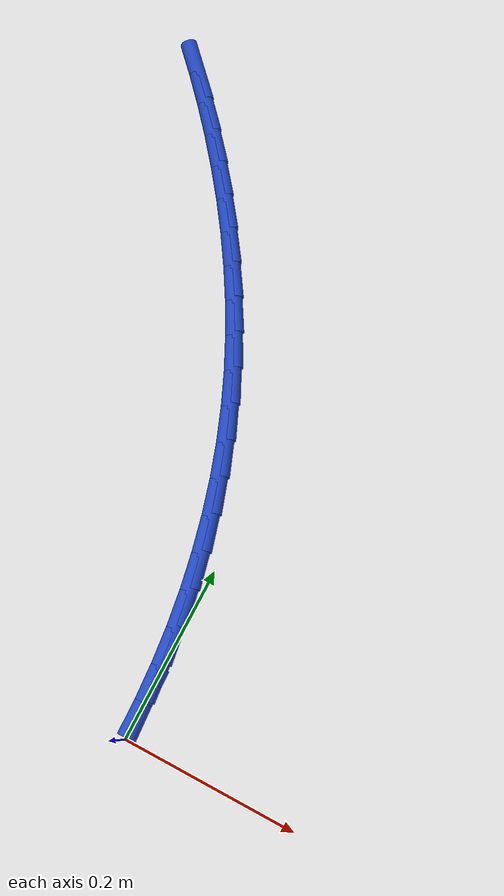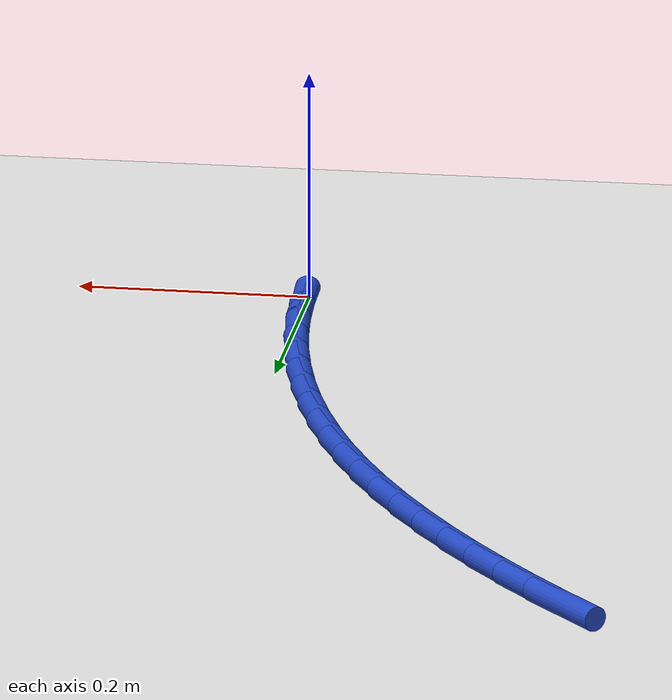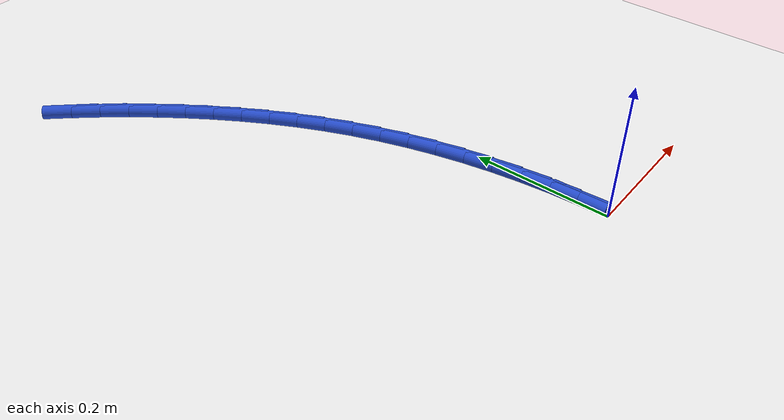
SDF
<sdf version="1.6">
 <world name="default">
  <model name="ground_plane">
   <static>1</static>
   <link name="link">
    <collision name="collision">
     <geometry><plane><normal>0 0 1</normal><size>100 100</size></plane></geometry>
     <surface><friction><ode><mu>100</mu><mu2>50</mu2></ode></friction></surface>
    </collision>
    <visual name="visual">
     <cast_shadows>0</cast_shadows>
     <geometry><plane><normal>0 0 1</normal><size>100 100</size></plane></geometry>
     <material>
      <script><uri>file://media/materials/scripts/gazebo.material</uri><name>Gazebo/WhiteGlow</name></script>
     </material>
    </visual>
   </link>
  </model>
  <model name="line">
   <link name="link_1">
    <pose>-0.0008917149829064989 0.04225184682010225 0.01 0 1.57 -1.507987470645882</pose>
    <collision name="collision">
     <geometry><cylinder><radius>0.01</radius><length>0.08</length></cylinder></geometry>
    </collision>
    <visual name="visual">
     <material>
      <script><name>Gazebo/Blue</name><uri>file://media/materials/scripts/gazebo.material</uri></script>
     </material>
     <geometry><cylinder><radius>0.01</radius><length>0.08</length></cylinder></geometry>
    </visual>
   </link>
   <link name="link_2">
    <pose>-0.003544431993051579 0.08443105488146378 0.01 0 1.57 -1.4662126143395446</pose>
    <collision name="collision">
     <geometry><cylinder><radius>0.01</radius><length>0.08</length></cylinder></geometry>
    </collision>
    <visual name="visual">
     <material>
      <script><name>Gazebo/Blue</name><uri>file://media/materials/scripts/gazebo.material</uri></script>
     </material>
     <geometry><cylinder><radius>0.01</radius><length>0.08</length></cylinder></geometry>
    </visual>
   </link>
   <link name="link_3">
    <pose>-0.007955623263167566 0.1264557314520991 0.01 0 1.57 -1.4242733198361823</pose>
    <collision name="collision">
     <geometry><cylinder><radius>0.01</radius><length>0.08</length></cylinder></geometry>
    </collision>
    <visual name="visual">
     <material>
      <script><name>Gazebo/Blue</name><uri>file://media/materials/scripts/gazebo.material</uri></script>
     </material>
     <geometry><cylinder><radius>0.01</radius><length>0.08</length></cylinder></geometry>
    </visual>
   </link>
   <link name="link_4">
    <pose>-0.014122761025986754 0.16824398380002256 0.01 0 1.57 -1.3820740800271367</pose>
    <collision name="collision">
     <geometry><cylinder><radius>0.01</radius><length>0.08</length></cylinder></geometry>
    </collision>
    <visual name="visual">
     <material>
      <script><name>Gazebo/Blue</name><uri>file://media/materials/scripts/gazebo.material</uri></script>
     </material>
     <geometry><cylinder><radius>0.01</radius><length>0.08</length></cylinder></geometry>
    </visual>
   </link>
   <link name="link_5">
    <pose>-0.02204331751424147 0.2097139191932487 0.01 0 1.57 -1.3395214974619023</pose>
    <collision name="collision">
     <geometry><cylinder><radius>0.01</radius><length>0.08</length></cylinder></geometry>
    </collision>
    <visual name="visual">
     <material>
      <script><name>Gazebo/Blue</name><uri>file://media/materials/scripts/gazebo.material</uri></script>
     </material>
     <geometry><cylinder><radius>0.01</radius><length>0.08</length></cylinder></geometry>
    </visual>
   </link>
   <link name="link_6">
    <pose>-0.03171476496066401 0.25078364489979194 0.01 0 1.57 -1.2965251851470005</pose>
    <collision name="collision">
     <geometry><cylinder><radius>0.01</radius><length>0.08</length></cylinder></geometry>
    </collision>
    <visual name="visual">
     <material>
      <script><name>Gazebo/Blue</name><uri>file://media/materials/scripts/gazebo.material</uri></script>
     </material>
     <geometry><cylinder><radius>0.01</radius><length>0.08</length></cylinder></geometry>
    </visual>
   </link>
   <link name="link_7">
    <pose>-0.04313457559798668 0.2913712681876667 0.01 0 1.57 -1.2529987964605125</pose>
    <collision name="collision">
     <geometry><cylinder><radius>0.01</radius><length>0.08</length></cylinder></geometry>
    </collision>
    <visual name="visual">
     <material>
      <script><name>Gazebo/Blue</name><uri>file://media/materials/scripts/gazebo.material</uri></script>
     </material>
     <geometry><cylinder><radius>0.01</radius><length>0.08</length></cylinder></geometry>
    </visual>
   </link>
   <link name="link_8">
    <pose>-0.0563002216589418 0.33139489632488744 0.01 0 1.57 -1.208861211700292</pose>
    <collision name="collision">
     <geometry><cylinder><radius>0.01</radius><length>0.08</length></cylinder></geometry>
    </collision>
    <visual name="visual">
     <material>
      <script><name>Gazebo/Blue</name><uri>file://media/materials/scripts/gazebo.material</uri></script>
     </material>
     <geometry><cylinder><radius>0.01</radius><length>0.08</length></cylinder></geometry>
    </visual>
   </link>
   <link name="link_9">
    <pose>-0.07120917537626167 0.3707726365794687 0.01 0 1.57 -1.1641908299851473</pose>
    <collision name="collision">
     <geometry><cylinder><radius>0.01</radius><length>0.08</length></cylinder></geometry>
    </collision>
    <visual name="visual">
     <material>
      <script><name>Gazebo/Blue</name><uri>file://media/materials/scripts/gazebo.material</uri></script>
     </material>
     <geometry><cylinder><radius>0.01</radius><length>0.08</length></cylinder></geometry>
    </visual>
   </link>
   <link name="link_10">
    <pose>-0.08785375197273362 0.40942689265982 0.01 0 1.57 -1.120559447956313</pose>
    <collision name="collision">
     <geometry><cylinder><radius>0.01</radius><length>0.08</length></cylinder></geometry>
    </collision>
    <visual name="visual">
     <material>
      <script><name>Gazebo/Blue</name><uri>file://media/materials/scripts/gazebo.material</uri></script>
     </material>
     <geometry><cylinder><radius>0.01</radius><length>0.08</length></cylinder></geometry>
    </visual>
   </link>
   <link name="link_11">
    <pose>-0.10617188093022237 0.44732537846314824 0.01 0 1.57 -1.078948379894648</pose>
    <collision name="collision">
     <geometry><cylinder><radius>0.01</radius><length>0.08</length></cylinder></geometry>
    </collision>
    <visual name="visual">
     <material>
      <script><name>Gazebo/Blue</name><uri>file://media/materials/scripts/gazebo.material</uri></script>
     </material>
     <geometry><cylinder><radius>0.01</radius><length>0.08</length></cylinder></geometry>
    </visual>
   </link>
   <link name="link_12">
    <pose>-0.1260688775343158 0.48446297962994544 0.01 0 1.57 -1.0393693031894846</pose>
    <collision name="collision">
     <geometry><cylinder><radius>0.01</radius><length>0.08</length></cylinder></geometry>
    </collision>
    <visual name="visual">
     <material>
      <script><name>Gazebo/Blue</name><uri>file://media/materials/scripts/gazebo.material</uri></script>
     </material>
     <geometry><cylinder><radius>0.01</radius><length>0.08</length></cylinder></geometry>
    </visual>
   </link>
   <link name="link_13">
    <pose>-0.14744961454976055 0.5208349504764361 0.01 0 1.57 -1.0017954590820315</pose>
    <collision name="collision">
     <geometry><cylinder><radius>0.01</radius><length>0.08</length></cylinder></geometry>
    </collision>
    <visual name="visual">
     <material>
      <script><name>Gazebo/Blue</name><uri>file://media/materials/scripts/gazebo.material</uri></script>
     </material>
     <geometry><cylinder><radius>0.01</radius><length>0.08</length></cylinder></geometry>
    </visual>
   </link>
   <link name="link_14">
    <pose>-0.17021896474130332 0.5564365453188453 0.01 0 1.57 -0.9661800652637308</pose>
    <collision name="collision">
     <geometry><cylinder><radius>0.01</radius><length>0.08</length></cylinder></geometry>
    </collision>
    <visual name="visual">
     <material>
      <script><name>Gazebo/Blue</name><uri>file://media/materials/scripts/gazebo.material</uri></script>
     </material>
     <geometry><cylinder><radius>0.01</radius><length>0.08</length></cylinder></geometry>
    </visual>
   </link>
   <link name="link_15">
    <pose>-0.19428180087369062 0.5912630184733974 0.01 0 1.57 -0.9324611764683312</pose>
    <collision name="collision">
     <geometry><cylinder><radius>0.01</radius><length>0.08</length></cylinder></geometry>
    </collision>
    <visual name="visual">
     <material>
      <script><name>Gazebo/Blue</name><uri>file://media/materials/scripts/gazebo.material</uri></script>
     </material>
     <geometry><cylinder><radius>0.01</radius><length>0.08</length></cylinder></geometry>
    </visual>
   </link>
   <link name="link_16">
    <pose>-0.21954299571166902 0.6253096242563165 0.01 0 1.57 -0.900565969145883</pose>
    <collision name="collision">
     <geometry><cylinder><radius>0.01</radius><length>0.08</length></cylinder></geometry>
    </collision>
    <visual name="visual">
     <material>
      <script><name>Gazebo/Blue</name><uri>file://media/materials/scripts/gazebo.material</uri></script>
     </material>
     <geometry><cylinder><radius>0.01</radius><length>0.08</length></cylinder></geometry>
    </visual>
   </link>
   <link name="link_17">
    <pose>-0.24590742201998533 0.6585716169838282 0.01 0 1.57 -0.8704143902009182</pose>
    <collision name="collision">
     <geometry><cylinder><radius>0.01</radius><length>0.08</length></cylinder></geometry>
    </collision>
    <visual name="visual">
     <material>
      <script><name>Gazebo/Blue</name><uri>file://media/materials/scripts/gazebo.material</uri></script>
     </material>
     <geometry><cylinder><radius>0.01</radius><length>0.08</length></cylinder></geometry>
    </visual>
   </link>
   <link name="link_18">
    <pose>-0.2732799525633859 0.6910442509721563 0.01 0 1.57 -0.8419221715945242</pose>
    <collision name="collision">
     <geometry><cylinder><radius>0.01</radius><length>0.08</length></cylinder></geometry>
    </collision>
    <visual name="visual">
     <material>
      <script><name>Gazebo/Blue</name><uri>file://media/materials/scripts/gazebo.material</uri></script>
     </material>
     <geometry><cylinder><radius>0.01</radius><length>0.08</length></cylinder></geometry>
    </visual>
   </link>
   <link name="link_19">
    <pose>-0.3015654601066175 0.7227227805375258 0.01 0 1.57 -0.8150032527196142</pose>
    <collision name="collision">
     <geometry><cylinder><radius>0.01</radius><length>0.08</length></cylinder></geometry>
    </collision>
    <visual name="visual">
     <material>
      <script><name>Gazebo/Blue</name><uri>file://media/materials/scripts/gazebo.material</uri></script>
     </material>
     <geometry><cylinder><radius>0.01</radius><length>0.08</length></cylinder></geometry>
    </visual>
   </link>
   <link name="link_161">
    <pose>-0.0008923180565035133 0.04225284122159864 0.01 0 1.57 -1.5496809316999367</pose>
    <collision name="collision">
     <geometry><cylinder><radius>0.01</radius><length>0.08</length></cylinder></geometry>
    </collision>
    <visual name="visual">
     <material>
      <script><name>Gazebo/Blue</name><uri>file://media/materials/scripts/gazebo.material</uri></script>
     </material>
     <geometry><cylinder><radius>0.01</radius><length>0.08</length></cylinder></geometry>
    </visual>
   </link>
  </model>
 </world>
</sdf>
